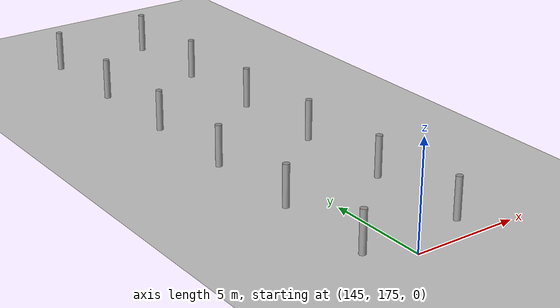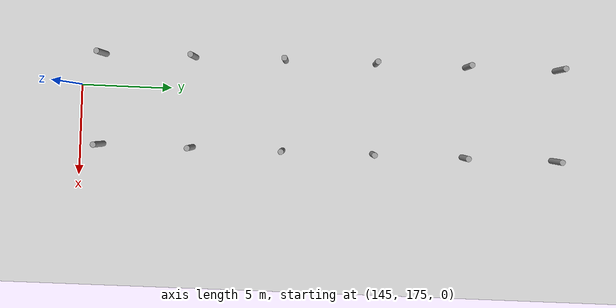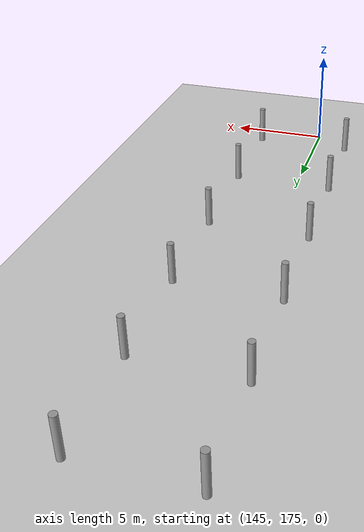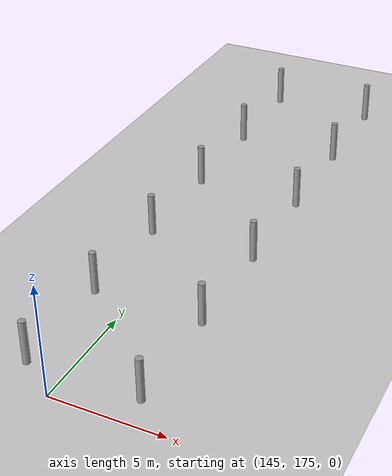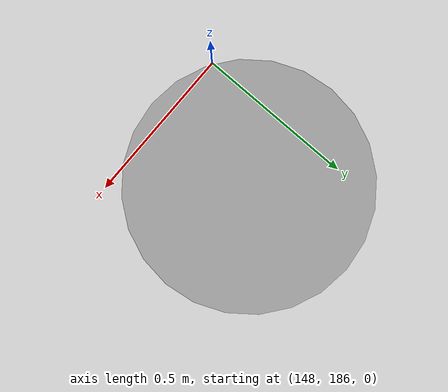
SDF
<sdf version="1.6">
 <world name="default">
  <light name="sun" type="directional">
   <pose>0 0 10 0 -0 0</pose>
   <diffuse>0.8 0.8 0.8 1</diffuse>
   <specular>0.2 0.2 0.2 1</specular>
   <attenuation>
    <range>1000</range>
    <constant>0.9</constant>
    <linear>0.01</linear>
    <quadratic>0.001</quadratic>
   </attenuation>
   <direction>-0.5 0.1 -0.9</direction>
  </light>
  <model name="ground_plane">
   <static>1</static>
   <link name="link">
    <collision name="collision">
     <geometry><plane><normal>0 0 1</normal><size>100 100</size></plane></geometry>
     <surface><friction><ode><mu>100</mu><mu2>50</mu2></ode></friction></surface>
    </collision>
    <visual name="visual">
     <cast_shadows>0</cast_shadows>
     <geometry><plane><normal>0 0 1</normal><size>100 100</size></plane></geometry>
     <material>
      <script><uri>file://media/materials/scripts/gazebo.material</uri><name>Gazebo/Grey</name></script>
     </material>
    </visual>
   </link>
  </model>
  <gravity>0 0 -9.8</gravity>
  <magnetic_field>6e-06 2.3e-05 -4.2e-05</magnetic_field>
  <atmosphere type="adiabatic"/>
  <physics name="default_physics" default="0" type="ode">
   <max_step_size>0.001</max_step_size>
   <real_time_factor>1</real_time_factor>
   <real_time_update_rate>1000</real_time_update_rate>
  </physics>
  <scene><ambient>0.4 0.4 0.4 1</ambient><background>0.7 0.7 0.7 1</background><shadows>1</shadows></scene>
  <audio><device>default</device></audio>
  <spherical_coordinates>
   <surface_model>EARTH_WGS84</surface_model>
   <latitude_deg>0</latitude_deg>
   <longitude_deg>0</longitude_deg>
   <elevation>0</elevation>
   <heading_deg>0</heading_deg>
  </spherical_coordinates>
  <model name="unit_cylinder_0">
   <pose>143.242 176.292 1.00291 0 0 -7.5e-05</pose>
   <link name="link">
    <inertial>
     <mass>1</mass>
     <inertia><ixx>0.145833</ixx><ixy>0</ixy><ixz>0</ixz><iyy>0.145833</iyy><iyz>0</iyz><izz>0.125</izz></inertia>
    </inertial>
    <collision name="collision">
     <geometry><cylinder><radius>0.157648</radius><length>2.00583</length></cylinder></geometry>
    </collision>
    <visual name="visual">
     <geometry><cylinder><radius>0.157648</radius><length>2.00583</length></cylinder></geometry>
     <material>
      <script><name>Gazebo/Grey</name><uri>file://media/materials/scripts/gazebo.material</uri></script>
     </material>
    </visual>
   </link>
  </model>
  <model name="unit_cylinder_1">
   <pose>143.242 181.292 1.0029 0 0 -6.9e-05</pose>
   <link name="link">
    <inertial>
     <mass>1</mass>
     <inertia><ixx>0.145833</ixx><ixy>0</ixy><ixz>0</ixz><iyy>0.145833</iyy><iyz>0</iyz><izz>0.125</izz></inertia>
    </inertial>
    <collision name="collision">
     <geometry><cylinder><radius>0.157649</radius><length>2.00582</length></cylinder></geometry>
    </collision>
    <visual name="visual">
     <geometry><cylinder><radius>0.157649</radius><length>2.00582</length></cylinder></geometry>
     <material>
      <script><name>Gazebo/Grey</name><uri>file://media/materials/scripts/gazebo.material</uri></script>
     </material>
    </visual>
   </link>
  </model>
  <model name="unit_cylinder_2">
   <pose>143.242 186.292 1.0029 0 0 -7.1e-05</pose>
   <link name="link">
    <inertial>
     <mass>1</mass>
     <inertia><ixx>0.145833</ixx><ixy>0</ixy><ixz>0</ixz><iyy>0.145833</iyy><iyz>0</iyz><izz>0.125</izz></inertia>
    </inertial>
    <collision name="collision">
     <geometry><cylinder><radius>0.157649</radius><length>2.00582</length></cylinder></geometry>
    </collision>
    <visual name="visual">
     <geometry><cylinder><radius>0.157649</radius><length>2.00582</length></cylinder></geometry>
     <material>
      <script><name>Gazebo/Grey</name><uri>file://media/materials/scripts/gazebo.material</uri></script>
     </material>
    </visual>
   </link>
  </model>
  <model name="unit_cylinder_3">
   <pose>143.242 191.292 1.00291 0 0 -7.5e-05</pose>
   <link name="link">
    <inertial>
     <mass>1</mass>
     <inertia><ixx>0.145833</ixx><ixy>0</ixy><ixz>0</ixz><iyy>0.145833</iyy><iyz>0</iyz><izz>0.125</izz></inertia>
    </inertial>
    <collision name="collision">
     <geometry><cylinder><radius>0.157648</radius><length>2.00583</length></cylinder></geometry>
    </collision>
    <visual name="visual">
     <geometry><cylinder><radius>0.157648</radius><length>2.00583</length></cylinder></geometry>
     <material>
      <script><name>Gazebo/Grey</name><uri>file://media/materials/scripts/gazebo.material</uri></script>
     </material>
    </visual>
   </link>
  </model>
  <model name="unit_cylinder_4">
   <pose>143.242 196.292 1.0029 0 0 -6.9e-05</pose>
   <link name="link">
    <inertial>
     <mass>1</mass>
     <inertia><ixx>0.145833</ixx><ixy>0</ixy><ixz>0</ixz><iyy>0.145833</iyy><iyz>0</iyz><izz>0.125</izz></inertia>
    </inertial>
    <collision name="collision">
     <geometry><cylinder><radius>0.157649</radius><length>2.00582</length></cylinder></geometry>
    </collision>
    <visual name="visual">
     <geometry><cylinder><radius>0.157649</radius><length>2.00582</length></cylinder></geometry>
     <material>
      <script><name>Gazebo/Grey</name><uri>file://media/materials/scripts/gazebo.material</uri></script>
     </material>
    </visual>
   </link>
  </model>
  <model name="unit_cylinder_5">
   <pose>143.242 201.292 1.0029 0 0 -7.1e-05</pose>
   <link name="link">
    <inertial>
     <mass>1</mass>
     <inertia><ixx>0.145833</ixx><ixy>0</ixy><ixz>0</ixz><iyy>0.145833</iyy><iyz>0</iyz><izz>0.125</izz></inertia>
    </inertial>
    <collision name="collision">
     <geometry><cylinder><radius>0.157649</radius><length>2.00582</length></cylinder></geometry>
    </collision>
    <visual name="visual">
     <geometry><cylinder><radius>0.157649</radius><length>2.00582</length></cylinder></geometry>
     <material>
      <script><name>Gazebo/Grey</name><uri>file://media/materials/scripts/gazebo.material</uri></script>
     </material>
    </visual>
   </link>
  </model>
  <model name="unit_cylinder_6">
   <pose>148.242 176.292 1.00291 0 0 -7.5e-05</pose>
   <link name="link">
    <inertial>
     <mass>1</mass>
     <inertia><ixx>0.145833</ixx><ixy>0</ixy><ixz>0</ixz><iyy>0.145833</iyy><iyz>0</iyz><izz>0.125</izz></inertia>
    </inertial>
    <collision name="collision">
     <geometry><cylinder><radius>0.157648</radius><length>2.00583</length></cylinder></geometry>
    </collision>
    <visual name="visual">
     <geometry><cylinder><radius>0.157648</radius><length>2.00583</length></cylinder></geometry>
     <material>
      <script><name>Gazebo/Grey</name><uri>file://media/materials/scripts/gazebo.material</uri></script>
     </material>
    </visual>
   </link>
  </model>
  <model name="unit_cylinder_7">
   <pose>148.242 181.292 1.0029 0 0 -6.9e-05</pose>
   <link name="link">
    <inertial>
     <mass>1</mass>
     <inertia><ixx>0.145833</ixx><ixy>0</ixy><ixz>0</ixz><iyy>0.145833</iyy><iyz>0</iyz><izz>0.125</izz></inertia>
    </inertial>
    <collision name="collision">
     <geometry><cylinder><radius>0.157649</radius><length>2.00582</length></cylinder></geometry>
    </collision>
    <visual name="visual">
     <geometry><cylinder><radius>0.157649</radius><length>2.00582</length></cylinder></geometry>
     <material>
      <script><name>Gazebo/Grey</name><uri>file://media/materials/scripts/gazebo.material</uri></script>
     </material>
    </visual>
   </link>
  </model>
  <model name="unit_cylinder_8">
   <pose>148.242 186.292 1.0029 0 0 -7.1e-05</pose>
   <link name="link">
    <inertial>
     <mass>1</mass>
     <inertia><ixx>0.145833</ixx><ixy>0</ixy><ixz>0</ixz><iyy>0.145833</iyy><iyz>0</iyz><izz>0.125</izz></inertia>
    </inertial>
    <collision name="collision">
     <geometry><cylinder><radius>0.157649</radius><length>2.00582</length></cylinder></geometry>
    </collision>
    <visual name="visual">
     <geometry><cylinder><radius>0.157649</radius><length>2.00582</length></cylinder></geometry>
     <material>
      <script><name>Gazebo/Grey</name><uri>file://media/materials/scripts/gazebo.material</uri></script>
     </material>
    </visual>
   </link>
  </model>
  <model name="unit_cylinder_9">
   <pose>148.242 191.292 1.00291 0 0 -7.5e-05</pose>
   <link name="link">
    <inertial>
     <mass>1</mass>
     <inertia><ixx>0.145833</ixx><ixy>0</ixy><ixz>0</ixz><iyy>0.145833</iyy><iyz>0</iyz><izz>0.125</izz></inertia>
    </inertial>
    <collision name="collision">
     <geometry><cylinder><radius>0.157648</radius><length>2.00583</length></cylinder></geometry>
    </collision>
    <visual name="visual">
     <geometry><cylinder><radius>0.157648</radius><length>2.00583</length></cylinder></geometry>
     <material>
      <script><name>Gazebo/Grey</name><uri>file://media/materials/scripts/gazebo.material</uri></script>
     </material>
    </visual>
   </link>
  </model>
  <model name="unit_cylinder_10">
   <pose>148.242 196.292 1.0029 0 0 -6.9e-05</pose>
   <link name="link">
    <inertial>
     <mass>1</mass>
     <inertia><ixx>0.145833</ixx><ixy>0</ixy><ixz>0</ixz><iyy>0.145833</iyy><iyz>0</iyz><izz>0.125</izz></inertia>
    </inertial>
    <collision name="collision">
     <geometry><cylinder><radius>0.157649</radius><length>2.00582</length></cylinder></geometry>
    </collision>
    <visual name="visual">
     <geometry><cylinder><radius>0.157649</radius><length>2.00582</length></cylinder></geometry>
     <material>
      <script><name>Gazebo/Grey</name><uri>file://media/materials/scripts/gazebo.material</uri></script>
     </material>
    </visual>
   </link>
  </model>
  <model name="unit_cylinder_11">
   <pose>148.242 201.292 1.0029 0 0 -7.1e-05</pose>
   <link name="link">
    <inertial>
     <mass>1</mass>
     <inertia><ixx>0.145833</ixx><ixy>0</ixy><ixz>0</ixz><iyy>0.145833</iyy><iyz>0</iyz><izz>0.125</izz></inertia>
    </inertial>
    <collision name="collision">
     <geometry><cylinder><radius>0.157649</radius><length>2.00582</length></cylinder></geometry>
    </collision>
    <visual name="visual">
     <geometry><cylinder><radius>0.157649</radius><length>2.00582</length></cylinder></geometry>
     <material>
      <script><name>Gazebo/Grey</name><uri>file://media/materials/scripts/gazebo.material</uri></script>
     </material>
    </visual>
   </link>
  </model>
 </world>
</sdf>
